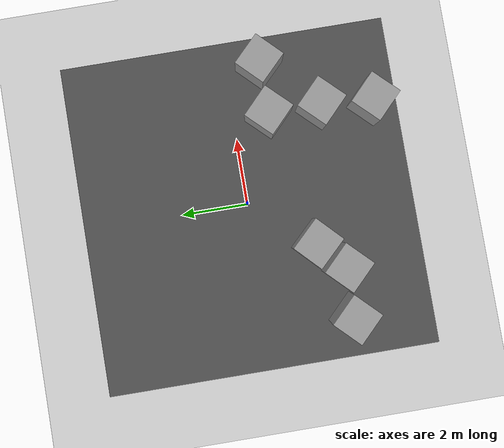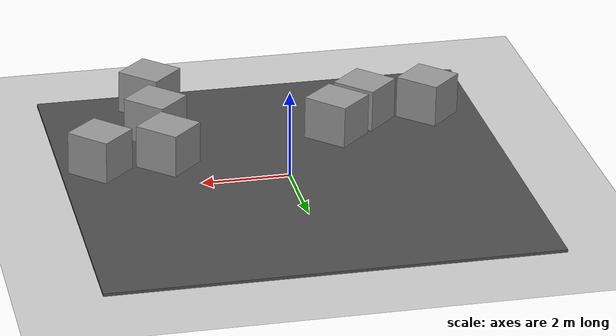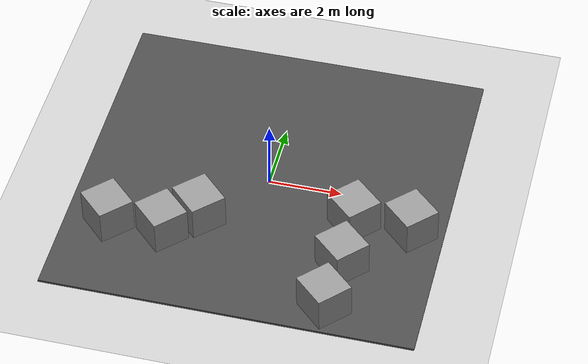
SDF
<sdf version="1.7">
 <world name="default">
  <model name="ground_plane">
   <static>1</static>
   <link name="link">
    <collision name="collision">
     <geometry><plane><normal>0 0 1</normal><size>100 100</size></plane></geometry>
     <surface><friction><ode><mu>100</mu><mu2>50</mu2></ode></friction></surface>
    </collision>
    <visual name="visual">
     <cast_shadows>0</cast_shadows>
     <geometry><plane><normal>0 0 1</normal><size>100 100</size></plane></geometry>
     <material>
      <script><uri>file://media/materials/scripts/gazebo.material</uri><name>Gazebo/Grey</name></script>
     </material>
    </visual>
    <velocity_decay><linear>0</linear><angular>0</angular></velocity_decay>
   </link>
  </model>
  <model name="asphalt_plane">
   <static>1</static>
   <link name="link">
    <collision name="collision"><geometry><box><size>10.0033 9.97431 0.1</size></box></geometry></collision>
    <visual name="visual">
     <cast_shadows>0</cast_shadows>
     <geometry><box><size>10.0033 9.97431 0.1</size></box></geometry>
     <material>
      <script>
       <uri>model://asphalt_plane/materials/scripts</uri>
       <uri>model://asphalt_plane/materials/textures</uri>
       <name>vrc/asphalt</name>
      </script>
     </material>
    </visual>
    <velocity_decay><linear>0</linear><angular>0</angular></velocity_decay>
   </link>
  </model>
  <model name="obstacle0">
   <link name="link">
    <inertial>
     <mass>1</mass>
     <inertia>
      <ixx>0.166667</ixx>
      <ixy>0</ixy>
      <ixz>0</ixz>
      <iyy>0.166667</iyy>
      <iyz>0</iyz>
      <izz>0.166667</izz>
     </inertia>
    </inertial>
    <visual name="visual">
     <geometry><box><size>1.08347 1 1</size></box></geometry>
     <material>
      <script><name>Gazebo/Grey</name><uri>file://media/materials/scripts/gazebo.material</uri></script>
      <shader type="pixel"/>
     </material>
    </visual>
    <collision name="collision">
     <geometry><box><size>1.08347 1 1</size></box></geometry>
     <surface>
      <friction>
       <ode><mu>1</mu><mu2>1</mu2><fdir1>0 0 0</fdir1><slip1>0</slip1><slip2>0</slip2></ode>
       <torsional>
        <coefficient>1</coefficient>
        <patch_radius>0</patch_radius>
        <surface_radius>0</surface_radius>
        <use_patch_radius>1</use_patch_radius>
        <ode><slip>0</slip></ode>
       </torsional>
      </friction>
      <bounce><restitution_coefficient>0</restitution_coefficient><threshold>1e+06</threshold></bounce>
      <contact>
       <collide_without_contact>0</collide_without_contact>
       <collide_without_contact_bitmask>1</collide_without_contact_bitmask>
       <collide_bitmask>1</collide_bitmask>
       <ode>
        <soft_cfm>0</soft_cfm>
        <soft_erp>0.2</soft_erp>
        <kp>1e+13</kp>
        <kd>1</kd>
        <max_vel>0.01</max_vel>
        <min_depth>0</min_depth>
       </ode>
       <bullet>
        <split_impulse>1</split_impulse>
        <split_impulse_penetration_threshold>-0.01</split_impulse_penetration_threshold>
        <soft_cfm>0</soft_cfm>
        <soft_erp>0.2</soft_erp>
        <kp>1e+13</kp>
        <kd>1</kd>
       </bullet>
      </contact>
     </surface>
    </collision>
   </link>
   <static>1</static>
   <pose>-1.48245 -1.82266 0.521268 0.01277 -0.012525 -0.795139</pose>
  </model>
  <model name="obstacle1">
   <link name="link">
    <inertial>
     <mass>1</mass>
     <inertia>
      <ixx>0.166667</ixx>
      <ixy>0</ixy>
      <ixz>0</ixz>
      <iyy>0.166667</iyy>
      <iyz>0</iyz>
      <izz>0.166667</izz>
     </inertia>
    </inertial>
    <visual name="visual">
     <geometry><box><size>1.05016 1 1</size></box></geometry>
     <material>
      <script><name>Gazebo/Grey</name><uri>file://media/materials/scripts/gazebo.material</uri></script>
      <shader type="pixel"/>
     </material>
    </visual>
    <collision name="collision">
     <geometry><box><size>1.05016 1 1</size></box></geometry>
     <surface>
      <friction>
       <ode><mu>1</mu><mu2>1</mu2><fdir1>0 0 0</fdir1><slip1>0</slip1><slip2>0</slip2></ode>
       <torsional>
        <coefficient>1</coefficient>
        <patch_radius>0</patch_radius>
        <surface_radius>0</surface_radius>
        <use_patch_radius>1</use_patch_radius>
        <ode><slip>0</slip></ode>
       </torsional>
      </friction>
      <bounce><restitution_coefficient>0</restitution_coefficient><threshold>1e+06</threshold></bounce>
      <contact>
       <collide_without_contact>0</collide_without_contact>
       <collide_without_contact_bitmask>1</collide_without_contact_bitmask>
       <collide_bitmask>1</collide_bitmask>
       <ode>
        <soft_cfm>0</soft_cfm>
        <soft_erp>0.2</soft_erp>
        <kp>1e+13</kp>
        <kd>1</kd>
        <max_vel>0.01</max_vel>
        <min_depth>0</min_depth>
       </ode>
       <bullet>
        <split_impulse>1</split_impulse>
        <split_impulse_penetration_threshold>-0.01</split_impulse_penetration_threshold>
        <soft_cfm>0</soft_cfm>
        <soft_erp>0.2</soft_erp>
        <kp>1e+13</kp>
        <kd>1</kd>
       </bullet>
      </contact>
     </surface>
    </collision>
   </link>
   <static>1</static>
   <pose>-2.30665 -2.58193 0.521268 0.012546 -0.012751 -0.777295</pose>
  </model>
  <model name="obstacle2">
   <link name="link">
    <inertial>
     <mass>1</mass>
     <inertia>
      <ixx>0.166667</ixx>
      <ixy>0</ixy>
      <ixz>0</ixz>
      <iyy>0.166667</iyy>
      <iyz>0</iyz>
      <izz>0.166667</izz>
     </inertia>
    </inertial>
    <visual name="visual">
     <geometry><box><size>1.05659 1 1</size></box></geometry>
     <material>
      <script><name>Gazebo/Grey</name><uri>file://media/materials/scripts/gazebo.material</uri></script>
      <shader type="pixel"/>
     </material>
    </visual>
    <collision name="collision">
     <geometry><box><size>1.05659 1 1</size></box></geometry>
     <surface>
      <friction>
       <ode><mu>1</mu><mu2>1</mu2><fdir1>0 0 0</fdir1><slip1>0</slip1><slip2>0</slip2></ode>
       <torsional>
        <coefficient>1</coefficient>
        <patch_radius>0</patch_radius>
        <surface_radius>0</surface_radius>
        <use_patch_radius>1</use_patch_radius>
        <ode><slip>0</slip></ode>
       </torsional>
      </friction>
      <bounce><restitution_coefficient>0</restitution_coefficient><threshold>1e+06</threshold></bounce>
      <contact>
       <collide_without_contact>0</collide_without_contact>
       <collide_without_contact_bitmask>1</collide_without_contact_bitmask>
       <collide_bitmask>1</collide_bitmask>
       <ode>
        <soft_cfm>0</soft_cfm>
        <soft_erp>0.2</soft_erp>
        <kp>1e+13</kp>
        <kd>1</kd>
        <max_vel>0.01</max_vel>
        <min_depth>0</min_depth>
       </ode>
       <bullet>
        <split_impulse>1</split_impulse>
        <split_impulse_penetration_threshold>-0.01</split_impulse_penetration_threshold>
        <soft_cfm>0</soft_cfm>
        <soft_erp>0.2</soft_erp>
        <kp>1e+13</kp>
        <kd>1</kd>
       </bullet>
      </contact>
     </surface>
    </collision>
   </link>
   <static>1</static>
   <pose>2.58551 -2.61645 0.52634 0.012367 -0.012924 -0.76345</pose>
  </model>
  <model name="obstacle4">
   <link name="link">
    <inertial>
     <mass>1</mass>
     <inertia>
      <ixx>0.166667</ixx>
      <ixy>0</ixy>
      <ixz>0</ixz>
      <iyy>0.166667</iyy>
      <iyz>0</iyz>
      <izz>0.166667</izz>
     </inertia>
    </inertial>
    <visual name="visual">
     <geometry><box><size>1.05016 1 1</size></box></geometry>
     <material>
      <script><name>Gazebo/Grey</name><uri>file://media/materials/scripts/gazebo.material</uri></script>
      <shader type="pixel"/>
     </material>
    </visual>
    <collision name="collision">
     <geometry><box><size>1.05016 1 1</size></box></geometry>
     <surface>
      <friction>
       <ode><mu>1</mu><mu2>1</mu2><fdir1>0 0 0</fdir1><slip1>0</slip1><slip2>0</slip2></ode>
       <torsional>
        <coefficient>1</coefficient>
        <patch_radius>0</patch_radius>
        <surface_radius>0</surface_radius>
        <use_patch_radius>1</use_patch_radius>
        <ode><slip>0</slip></ode>
       </torsional>
      </friction>
      <bounce><restitution_coefficient>0</restitution_coefficient><threshold>1e+06</threshold></bounce>
      <contact>
       <collide_without_contact>0</collide_without_contact>
       <collide_without_contact_bitmask>1</collide_without_contact_bitmask>
       <collide_bitmask>1</collide_bitmask>
       <ode>
        <soft_cfm>0</soft_cfm>
        <soft_erp>0.2</soft_erp>
        <kp>1e+13</kp>
        <kd>1</kd>
        <max_vel>0.01</max_vel>
        <min_depth>0</min_depth>
       </ode>
       <bullet>
        <split_impulse>1</split_impulse>
        <split_impulse_penetration_threshold>-0.01</split_impulse_penetration_threshold>
        <soft_cfm>0</soft_cfm>
        <soft_erp>0.2</soft_erp>
        <kp>1e+13</kp>
        <kd>1</kd>
       </bullet>
      </contact>
     </surface>
    </collision>
   </link>
   <static>1</static>
   <pose>-3.7993 -2.55736 0.521268 0.012546 -0.012751 -0.777295</pose>
  </model>
  <model name="obstacle3">
   <link name="link">
    <inertial>
     <mass>1</mass>
     <inertia>
      <ixx>0.166667</ixx>
      <ixy>0</ixy>
      <ixz>0</ixz>
      <iyy>0.166667</iyy>
      <iyz>0</iyz>
      <izz>0.166667</izz>
     </inertia>
    </inertial>
    <visual name="visual">
     <geometry><box><size>1.05016 1 1</size></box></geometry>
     <material>
      <script><name>Gazebo/Grey</name><uri>file://media/materials/scripts/gazebo.material</uri></script>
      <shader type="pixel"/>
     </material>
    </visual>
    <collision name="collision">
     <geometry><box><size>1.05016 1 1</size></box></geometry>
     <surface>
      <friction>
       <ode><mu>1</mu><mu2>1</mu2><fdir1>0 0 0</fdir1><slip1>0</slip1><slip2>0</slip2></ode>
       <torsional>
        <coefficient>1</coefficient>
        <patch_radius>0</patch_radius>
        <surface_radius>0</surface_radius>
        <use_patch_radius>1</use_patch_radius>
        <ode><slip>0</slip></ode>
       </torsional>
      </friction>
      <bounce><restitution_coefficient>0</restitution_coefficient><threshold>1e+06</threshold></bounce>
      <contact>
       <collide_without_contact>0</collide_without_contact>
       <collide_without_contact_bitmask>1</collide_without_contact_bitmask>
       <collide_bitmask>1</collide_bitmask>
       <ode>
        <soft_cfm>0</soft_cfm>
        <soft_erp>0.2</soft_erp>
        <kp>1e+13</kp>
        <kd>1</kd>
        <max_vel>0.01</max_vel>
        <min_depth>0</min_depth>
       </ode>
       <bullet>
        <split_impulse>1</split_impulse>
        <split_impulse_penetration_threshold>-0.01</split_impulse_penetration_threshold>
        <soft_cfm>0</soft_cfm>
        <soft_erp>0.2</soft_erp>
        <kp>1e+13</kp>
        <kd>1</kd>
       </bullet>
      </contact>
     </surface>
    </collision>
   </link>
   <static>1</static>
   <pose>4.10928 -1.02721 0.521268 0.012546 -0.012751 -0.777295</pose>
  </model>
  <model name="obstacle9">
   <link name="link">
    <inertial>
     <mass>1</mass>
     <inertia>
      <ixx>0.166667</ixx>
      <ixy>0</ixy>
      <ixz>0</ixz>
      <iyy>0.166667</iyy>
      <iyz>0</iyz>
      <izz>0.166667</izz>
     </inertia>
    </inertial>
    <visual name="visual">
     <geometry><box><size>1.05659 1 1</size></box></geometry>
     <material>
      <script><name>Gazebo/Grey</name><uri>file://media/materials/scripts/gazebo.material</uri></script>
      <shader type="pixel"/>
     </material>
    </visual>
    <collision name="collision">
     <geometry><box><size>1.05659 1 1</size></box></geometry>
     <surface>
      <friction>
       <ode><mu>1</mu><mu2>1</mu2><fdir1>0 0 0</fdir1><slip1>0</slip1><slip2>0</slip2></ode>
       <torsional>
        <coefficient>1</coefficient>
        <patch_radius>0</patch_radius>
        <surface_radius>0</surface_radius>
        <use_patch_radius>1</use_patch_radius>
        <ode><slip>0</slip></ode>
       </torsional>
      </friction>
      <bounce><restitution_coefficient>0</restitution_coefficient><threshold>1e+06</threshold></bounce>
      <contact>
       <collide_without_contact>0</collide_without_contact>
       <collide_without_contact_bitmask>1</collide_without_contact_bitmask>
       <collide_bitmask>1</collide_bitmask>
       <ode>
        <soft_cfm>0</soft_cfm>
        <soft_erp>0.2</soft_erp>
        <kp>1e+13</kp>
        <kd>1</kd>
        <max_vel>0.01</max_vel>
        <min_depth>0</min_depth>
       </ode>
       <bullet>
        <split_impulse>1</split_impulse>
        <split_impulse_penetration_threshold>-0.01</split_impulse_penetration_threshold>
        <soft_cfm>0</soft_cfm>
        <soft_erp>0.2</soft_erp>
        <kp>1e+13</kp>
        <kd>1</kd>
       </bullet>
      </contact>
     </surface>
    </collision>
   </link>
   <static>1</static>
   <pose>2.56022 -1.05174 0.52634 0.012367 -0.012924 -0.76345</pose>
  </model>
  <model name="obstacle10">
   <link name="link">
    <inertial>
     <mass>1</mass>
     <inertia>
      <ixx>0.166667</ixx>
      <ixy>0</ixy>
      <ixz>0</ixz>
      <iyy>0.166667</iyy>
      <iyz>0</iyz>
      <izz>0.166667</izz>
     </inertia>
    </inertial>
    <visual name="visual">
     <geometry><box><size>1.05659 1 1</size></box></geometry>
     <material>
      <script><name>Gazebo/Grey</name><uri>file://media/materials/scripts/gazebo.material</uri></script>
      <shader type="pixel"/>
     </material>
    </visual>
    <collision name="collision">
     <geometry><box><size>1.05659 1 1</size></box></geometry>
     <surface>
      <friction>
       <ode><mu>1</mu><mu2>1</mu2><fdir1>0 0 0</fdir1><slip1>0</slip1><slip2>0</slip2></ode>
       <torsional>
        <coefficient>1</coefficient>
        <patch_radius>0</patch_radius>
        <surface_radius>0</surface_radius>
        <use_patch_radius>1</use_patch_radius>
        <ode><slip>0</slip></ode>
       </torsional>
      </friction>
      <bounce><restitution_coefficient>0</restitution_coefficient><threshold>1e+06</threshold></bounce>
      <contact>
       <collide_without_contact>0</collide_without_contact>
       <collide_without_contact_bitmask>1</collide_without_contact_bitmask>
       <collide_bitmask>1</collide_bitmask>
       <ode>
        <soft_cfm>0</soft_cfm>
        <soft_erp>0.2</soft_erp>
        <kp>1e+13</kp>
        <kd>1</kd>
        <max_vel>0.01</max_vel>
        <min_depth>0</min_depth>
       </ode>
       <bullet>
        <split_impulse>1</split_impulse>
        <split_impulse_penetration_threshold>-0.01</split_impulse_penetration_threshold>
        <soft_cfm>0</soft_cfm>
        <soft_erp>0.2</soft_erp>
        <kp>1e+13</kp>
        <kd>1</kd>
       </bullet>
      </contact>
     </surface>
    </collision>
   </link>
   <static>1</static>
   <pose>2.45782 -4.18026 0.52634 0.012367 -0.012924 -0.76345</pose>
  </model>
 </world>
</sdf>
